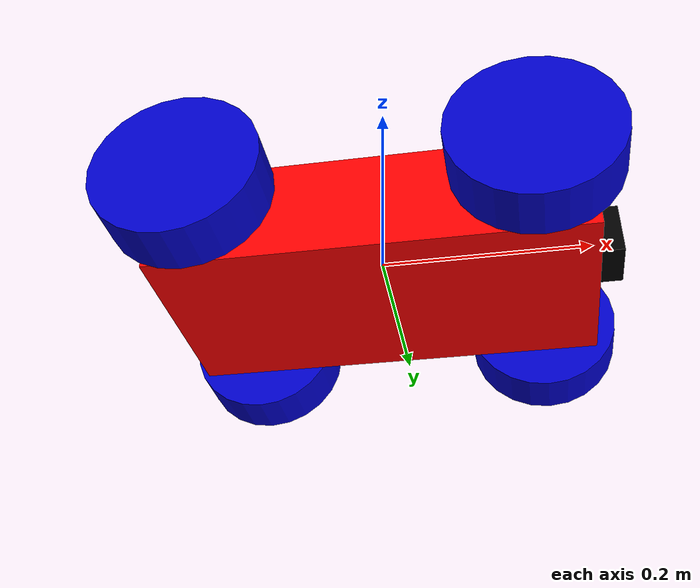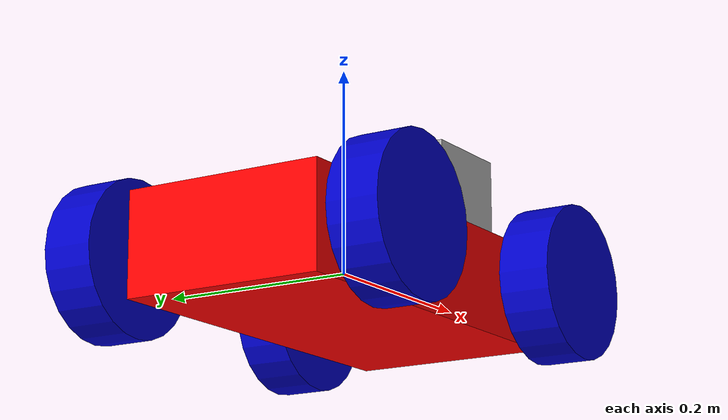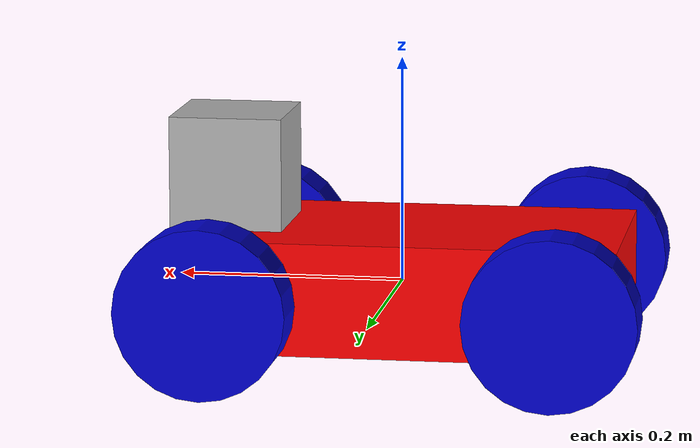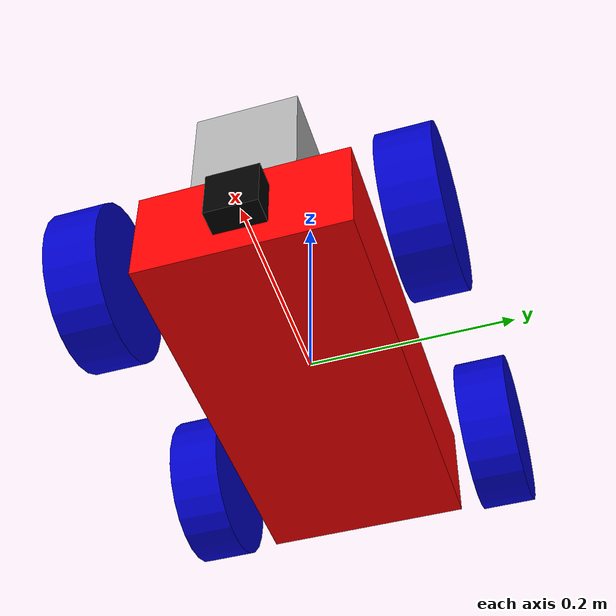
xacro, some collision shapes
<?xml version='1.0'?>

<robot name="my_robot" xmlns:xacro="http://www.ros.org/wiki/xacro">
<xacro:include filename="$(find my_robot)/urdf/my_robot.gazebo" />

 <!-- Length along X-axis, Width along Y-axis, Height along Z-axis -->
  <xacro:property name="wheel_radius" value="0.075" />
  <xacro:property name="wheel_track" value="0.3" />
  <xacro:property name="wheel_base" value="0.3" />
  <xacro:property name="wheel_width" value="0.05" />

  <material name="blue">
    <color rgba="0 0 0.8 1"/>
  </material>

  <material name="black">
    <color rgba="0 0 0 1"/>
  </material>

  <material name="green">
    <color rgba="0 1 0 1"/>
  </material>
  <material name="red">
    <color rgba="1 0 0 1"/>
  </material>
  <material name="brown">
    <color rgba="0.4 0.2 0 1"/>
  </material>
 <material name="purple">
    <color rgba="0.3 0 0.6 1"/>
  </material>

  <link name="robot_footprint"></link>

  <joint name="robot_footprint_joint" type="fixed">
    <origin xyz="0 0 0" rpy="0 0 0" />
    <parent link="robot_footprint"/>
    <child link="chassis" />
  </joint>

  <link name='chassis'>
    <pose>0 0 0.1 0 0 0</pose>

    <inertial>
      <mass value="15.0"/>
      <origin xyz="0.0 0 0" rpy=" 0 0 0"/>
      <inertia
          ixx="0.1" ixy="0" ixz="0"
          iyy="0.1" iyz="0"
          izz="0.1"
      />
    </inertial>

    <collision name='collision'>
      <origin xyz="0 0 0" rpy=" 0 0 0"/>
      <geometry>
        <box size=".4 .2 .1"/>
      </geometry>
    </collision>

    <visual name='chassis_visual'>
      <origin xyz="0 0 0" rpy=" 0 0 0"/>
      <geometry>
        <box size=".4 .2 .1"/>
      </geometry>
      <material name="red"/>
    </visual>

  </link>

  <joint type="continuous" name="left_front_wheel_hinge">
    <origin xyz="${wheel_base/2} ${wheel_track/2} 0" rpy="0 0 0"/>
    <child link="left_front_wheel"/>
    <parent link="chassis"/>
    <axis xyz="0 1 0" rpy="0 0 0"/>
    <limit effort="10000" velocity="1000"/>
    <dynamics damping="1.0" friction="1.0"/>
  </joint>

  <link name="left_front_wheel">

     <inertial>
      <mass value="5"/>
      <origin xyz="0 0 0" rpy="0 1.5707 1.5707"/>
      <inertia
          ixx="0.1" ixy="0" ixz="0"
          iyy="0.1" iyz="0"
          izz="0.1"
      />
    </inertial>

    <collision name='left_front_wheel_collision'>
      <origin xyz="0 0 0" rpy="0 1.5707 1.5707"/>
      <geometry>
        <cylinder  radius="${wheel_radius}" length="${wheel_width}"/>
      </geometry>
    </collision>

    <visual name='left_front_wheel_visual'>
       <origin xyz="0 0 0" rpy="0 1.5707 1.5707"/>
      <geometry>
         <cylinder  radius="${wheel_radius}" length="${wheel_width}"/>
      </geometry>
      <material name="blue"/>
    </visual>

  </link>

  <joint type="continuous" name="left_rear_wheel_hinge">
    <origin xyz="-${wheel_base/2} ${wheel_track/2} 0" rpy="0 0 0"/>
    <child link="left_rear_wheel"/>
    <parent link="chassis"/>
    <axis xyz="0 1 0" rpy="0 0 0"/>
    <limit effort="10000" velocity="1000"/>
    <dynamics damping="1.0" friction="1.0"/>
  </joint>

  <link name="left_rear_wheel">

     <inertial>
      <mass value="5"/>
      <origin xyz="0 0 0" rpy="0 1.5707 1.5707"/>
      <inertia
          ixx="0.1" ixy="0" ixz="0"
          iyy="0.1" iyz="0"
          izz="0.1"
      />
    </inertial>

    <collision name='left_rear_wheel_collision'>
      <origin xyz="0 0 0" rpy="0 1.5707 1.5707"/>
      <geometry>
         <cylinder  radius="${wheel_radius}" length="${wheel_width}"/>
      </geometry>
    </collision>

    <visual name='left_rear_wheel_visual'>
       <origin xyz="0 0 0" rpy="0 1.5707 1.5707"/>
      <geometry>
         <cylinder  radius="${wheel_radius}" length="${wheel_width}"/>
      </geometry>
      <material name="blue"/>
    </visual>

  </link>

 <joint type="continuous" name="right_front_wheel_hinge">
    <origin xyz="${wheel_base/2} -${wheel_track/2} 00" rpy="0 0 0"/>
    <child link="right_front_wheel"/>
    <parent link="chassis"/>
    <axis xyz="0 1 0" rpy="0 0 0"/>
    <limit effort="10000" velocity="1000"/>
    <dynamics damping="1.0" friction="1.0"/>
  </joint>

  <link name="right_front_wheel">

     <inertial>
      <mass value="5"/>
      <origin xyz="0 0 0" rpy="0 1.5707 1.5707"/>
      <inertia
          ixx="0.1" ixy="0" ixz="0"
          iyy="0.1" iyz="0"
          izz="0.1"
      />
    </inertial>

    <collision name='right_front_wheel_collision'>
      <origin xyz="0 0 0" rpy="0 1.5707 1.5707"/>
      <geometry>
         <cylinder  radius="${wheel_radius}" length="${wheel_width}"/>
      </geometry>
    </collision>

    <visual name='right_front_wheel_visual'>
       <origin xyz="0 0 0" rpy="0 1.5707 1.5707"/>
      <geometry>
         <cylinder  radius="${wheel_radius}" length="${wheel_width}"/>
      </geometry>
      <material name="blue"/>
    </visual>

  </link>

 <joint type="continuous" name="right_rear_wheel_hinge">
    <origin xyz="-${wheel_base/2} -${wheel_track/2} 0" rpy="0 0 0"/>
    <child link="right_rear_wheel"/>
    <parent link="chassis"/>
    <axis xyz="0 1 0" rpy="0 0 0"/>
    <limit effort="10000" velocity="1000"/>
    <dynamics damping="1.0" friction="1.0"/>
  </joint>

  <link name="right_rear_wheel">

     <inertial>
      <mass value="5"/>
      <origin xyz="0 0 0" rpy="0 1.5707 1.5707"/>
      <inertia
          ixx="0.1" ixy="0" ixz="0"
          iyy="0.1" iyz="0"
          izz="0.1"
      />
    </inertial>

    <collision name='right_rear_wheel_collision'>
      <origin xyz="0 0 0" rpy="0 1.5707 1.5707"/>
      <geometry>
         <cylinder  radius="${wheel_radius}" length="${wheel_width}"/>
      </geometry>
    </collision>

    <visual name='right_rear_wheel_visual'>
       <origin xyz="0 0 0" rpy="0 1.5707 1.5707"/>
      <geometry>
         <cylinder  radius="${wheel_radius}" length="${wheel_width}"/>
      </geometry>
      <material name="blue"/>
    </visual>

  </link>
 <joint type="fixed" name="camera_joint">
    <origin xyz="0.2 0 0" rpy="0 0 0"/>
    <child link="camera_link"/>
    <parent link="chassis"/>
    <axis xyz="0 1 0" rpy="0 0 0"/>
  </joint>

  <link name="camera_link">

     <inertial>
      <mass value="0.1"/>
      <origin xyz="0 0 0" rpy="0 0 0"/>
      <inertia
          ixx="1e-6" ixy="0" ixz="0"
          iyy="1e-6" iyz="0"
          izz="1e-6"
      />
    </inertial>

    <collision name='camera_collision'>
      <origin xyz="0 0 0" rpy="0 0 0"/>
      <geometry>
        <box size=".05 .05 .05"/>
      </geometry>
    </collision>

    <visual name='camera_visual'>
       <origin xyz="0 0 0" rpy="0 0 0"/>
      <geometry>
        <box size=".05 .05 .05"/>
      </geometry>
      <material name="black"/>
    </visual>

  </link>

<joint type="fixed" name="hokuyo_joint">
    <origin xyz="0.15 0 0.1" rpy="0 0 0"/>
    <child link="hokuyo"/>
    <parent link="chassis"/>
    <axis xyz="0 1 0" rpy="0 0 0"/>
  </joint>

  <link name="hokuyo">

     <inertial>
      <mass value="1e-5"/>
      <origin xyz="0 0 0" rpy="0 0 0"/>
      <inertia
          ixx="1e-6" ixy="0" ixz="0"
          iyy="1e-6" iyz="0"
          izz="1e-6"
      />
    </inertial>

    <collision name='hokuyo_collision'>
      <origin xyz="0 0 0" rpy="0 0 0"/>
      <geometry>
        <box size=".1 .1 .1"/>
      </geometry>
    </collision>

    <visual name='hokuyo_visual'>
       <origin xyz="0 0 0" rpy="0 0 0"/>
      <geometry>
        <mesh filename="package://my_robot/meshes/hokuyo.dae"/>
      </geometry>
    </visual>

  </link>

  <!-- Kinect camera for RTAB-Map -->
  <joint name="camera_optical_joint" type="fixed">
    <origin xyz="0 0 0" rpy="-1.5707 0 -1.5707"/>
    <parent link="camera_link"/>
    <child link="camera_link_optical"/>
  </joint>

  <link name="camera_link_optical">
  </link>

</robot>
